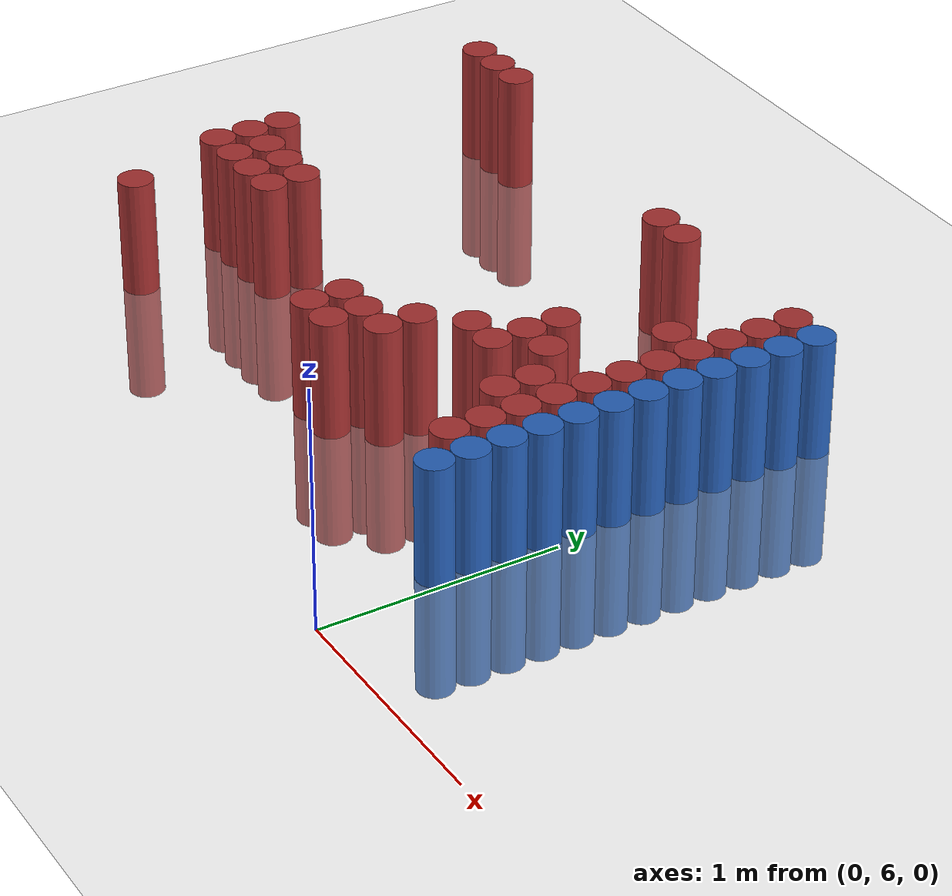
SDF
<sdf version="1.6">
 <world name="default">
  <model name="ground_plane">
   <static>1</static>
   <link name="link">
    <collision name="collision">
     <geometry><plane><normal>0 0 1</normal><size>100 100</size></plane></geometry>
     <surface><friction><ode><mu>100</mu><mu2>50</mu2></ode></friction></surface>
    </collision>
    <visual name="visual">
     <cast_shadows>0</cast_shadows>
     <geometry><plane><normal>0 0 1</normal><size>100 100</size></plane></geometry>
     <material>
      <script><uri>file://media/materials/scripts/gazebo.material</uri><name>Gazebo/Grey</name></script>
     </material>
    </visual>
   </link>
  </model>
  <model name="unit_cylinder_181">
   <static>1</static>
   <pose>-2.775000 8.325000 0.000000 0.000000 0.000000 0.000000</pose>
   <link name="link">
    <inertial>
     <mass>1</mass>
     <inertia><ixx>0.145833</ixx><ixy>0</ixy><ixz>0</ixz><iyy>0.145833</iyy><iyz>0</iyz><izz>0.125</izz></inertia>
    </inertial>
    <collision name="collision">
     <geometry><cylinder><radius>0.075000</radius><length>1</length></cylinder></geometry>
    </collision>
    <visual name="visual">
     <geometry><cylinder><radius>0.075000</radius><length>1</length></cylinder></geometry>
     <material>
      <ambient>0.648000 0.192000 0.192000 1</ambient>
      <diffuse>0.648000 0.192000 0.192000 1</diffuse>
     </material>
     <material>
      <script><name>Gazebo/Grey</name><uri>file://media/materials/scripts/gazebo.material</uri></script>
     </material>
    </visual>
   </link>
  </model>
  <model name="unit_cylinder_193">
   <static>1</static>
   <pose>-2.625000 6.975000 0.000000 0.000000 0.000000 0.000000</pose>
   <link name="link">
    <inertial>
     <mass>1</mass>
     <inertia><ixx>0.145833</ixx><ixy>0</ixy><ixz>0</ixz><iyy>0.145833</iyy><iyz>0</iyz><izz>0.125</izz></inertia>
    </inertial>
    <collision name="collision">
     <geometry><cylinder><radius>0.075000</radius><length>1</length></cylinder></geometry>
    </collision>
    <visual name="visual">
     <geometry><cylinder><radius>0.075000</radius><length>1</length></cylinder></geometry>
     <material>
      <ambient>0.648000 0.192000 0.192000 1</ambient>
      <diffuse>0.648000 0.192000 0.192000 1</diffuse>
     </material>
     <material>
      <script><name>Gazebo/Grey</name><uri>file://media/materials/scripts/gazebo.material</uri></script>
     </material>
    </visual>
   </link>
  </model>
  <model name="unit_cylinder_194">
   <static>1</static>
   <pose>-2.625000 7.125000 0.000000 0.000000 0.000000 0.000000</pose>
   <link name="link">
    <inertial>
     <mass>1</mass>
     <inertia><ixx>0.145833</ixx><ixy>0</ixy><ixz>0</ixz><iyy>0.145833</iyy><iyz>0</iyz><izz>0.125</izz></inertia>
    </inertial>
    <collision name="collision">
     <geometry><cylinder><radius>0.075000</radius><length>1</length></cylinder></geometry>
    </collision>
    <visual name="visual">
     <geometry><cylinder><radius>0.075000</radius><length>1</length></cylinder></geometry>
     <material>
      <ambient>0.648000 0.192000 0.192000 1</ambient>
      <diffuse>0.648000 0.192000 0.192000 1</diffuse>
     </material>
     <material>
      <script><name>Gazebo/Grey</name><uri>file://media/materials/scripts/gazebo.material</uri></script>
     </material>
    </visual>
   </link>
  </model>
  <model name="unit_cylinder_195">
   <static>1</static>
   <pose>-2.625000 7.275000 0.000000 0.000000 0.000000 0.000000</pose>
   <link name="link">
    <inertial>
     <mass>1</mass>
     <inertia><ixx>0.145833</ixx><ixy>0</ixy><ixz>0</ixz><iyy>0.145833</iyy><iyz>0</iyz><izz>0.125</izz></inertia>
    </inertial>
    <collision name="collision">
     <geometry><cylinder><radius>0.075000</radius><length>1</length></cylinder></geometry>
    </collision>
    <visual name="visual">
     <geometry><cylinder><radius>0.075000</radius><length>1</length></cylinder></geometry>
     <material>
      <ambient>0.648000 0.192000 0.192000 1</ambient>
      <diffuse>0.648000 0.192000 0.192000 1</diffuse>
     </material>
     <material>
      <script><name>Gazebo/Grey</name><uri>file://media/materials/scripts/gazebo.material</uri></script>
     </material>
    </visual>
   </link>
  </model>
  <model name="unit_cylinder_196">
   <static>1</static>
   <pose>-2.625000 8.325000 0.000000 0.000000 0.000000 0.000000</pose>
   <link name="link">
    <inertial>
     <mass>1</mass>
     <inertia><ixx>0.145833</ixx><ixy>0</ixy><ixz>0</ixz><iyy>0.145833</iyy><iyz>0</iyz><izz>0.125</izz></inertia>
    </inertial>
    <collision name="collision">
     <geometry><cylinder><radius>0.075000</radius><length>1</length></cylinder></geometry>
    </collision>
    <visual name="visual">
     <geometry><cylinder><radius>0.075000</radius><length>1</length></cylinder></geometry>
     <material>
      <ambient>0.648000 0.192000 0.192000 1</ambient>
      <diffuse>0.648000 0.192000 0.192000 1</diffuse>
     </material>
     <material>
      <script><name>Gazebo/Grey</name><uri>file://media/materials/scripts/gazebo.material</uri></script>
     </material>
    </visual>
   </link>
  </model>
  <model name="unit_cylinder_201">
   <static>1</static>
   <pose>-2.475000 6.525000 0.000000 0.000000 0.000000 0.000000</pose>
   <link name="link">
    <inertial>
     <mass>1</mass>
     <inertia><ixx>0.145833</ixx><ixy>0</ixy><ixz>0</ixz><iyy>0.145833</iyy><iyz>0</iyz><izz>0.125</izz></inertia>
    </inertial>
    <collision name="collision">
     <geometry><cylinder><radius>0.075000</radius><length>1</length></cylinder></geometry>
    </collision>
    <visual name="visual">
     <geometry><cylinder><radius>0.075000</radius><length>1</length></cylinder></geometry>
     <material>
      <ambient>0.648000 0.192000 0.192000 1</ambient>
      <diffuse>0.648000 0.192000 0.192000 1</diffuse>
     </material>
     <material>
      <script><name>Gazebo/Grey</name><uri>file://media/materials/scripts/gazebo.material</uri></script>
     </material>
    </visual>
   </link>
  </model>
  <model name="unit_cylinder_202">
   <static>1</static>
   <pose>-2.475000 6.975000 0.000000 0.000000 0.000000 0.000000</pose>
   <link name="link">
    <inertial>
     <mass>1</mass>
     <inertia><ixx>0.145833</ixx><ixy>0</ixy><ixz>0</ixz><iyy>0.145833</iyy><iyz>0</iyz><izz>0.125</izz></inertia>
    </inertial>
    <collision name="collision">
     <geometry><cylinder><radius>0.075000</radius><length>1</length></cylinder></geometry>
    </collision>
    <visual name="visual">
     <geometry><cylinder><radius>0.075000</radius><length>1</length></cylinder></geometry>
     <material>
      <ambient>0.648000 0.192000 0.192000 1</ambient>
      <diffuse>0.648000 0.192000 0.192000 1</diffuse>
     </material>
     <material>
      <script><name>Gazebo/Grey</name><uri>file://media/materials/scripts/gazebo.material</uri></script>
     </material>
    </visual>
   </link>
  </model>
  <model name="unit_cylinder_203">
   <static>1</static>
   <pose>-2.475000 7.125000 0.000000 0.000000 0.000000 0.000000</pose>
   <link name="link">
    <inertial>
     <mass>1</mass>
     <inertia><ixx>0.145833</ixx><ixy>0</ixy><ixz>0</ixz><iyy>0.145833</iyy><iyz>0</iyz><izz>0.125</izz></inertia>
    </inertial>
    <collision name="collision">
     <geometry><cylinder><radius>0.075000</radius><length>1</length></cylinder></geometry>
    </collision>
    <visual name="visual">
     <geometry><cylinder><radius>0.075000</radius><length>1</length></cylinder></geometry>
     <material>
      <ambient>0.648000 0.192000 0.192000 1</ambient>
      <diffuse>0.648000 0.192000 0.192000 1</diffuse>
     </material>
     <material>
      <script><name>Gazebo/Grey</name><uri>file://media/materials/scripts/gazebo.material</uri></script>
     </material>
    </visual>
   </link>
  </model>
  <model name="unit_cylinder_204">
   <static>1</static>
   <pose>-2.475000 8.325000 0.000000 0.000000 0.000000 0.000000</pose>
   <link name="link">
    <inertial>
     <mass>1</mass>
     <inertia><ixx>0.145833</ixx><ixy>0</ixy><ixz>0</ixz><iyy>0.145833</iyy><iyz>0</iyz><izz>0.125</izz></inertia>
    </inertial>
    <collision name="collision">
     <geometry><cylinder><radius>0.075000</radius><length>1</length></cylinder></geometry>
    </collision>
    <visual name="visual">
     <geometry><cylinder><radius>0.075000</radius><length>1</length></cylinder></geometry>
     <material>
      <ambient>0.648000 0.192000 0.192000 1</ambient>
      <diffuse>0.648000 0.192000 0.192000 1</diffuse>
     </material>
     <material>
      <script><name>Gazebo/Grey</name><uri>file://media/materials/scripts/gazebo.material</uri></script>
     </material>
    </visual>
   </link>
  </model>
  <model name="unit_cylinder_210">
   <static>1</static>
   <pose>-2.325000 6.975000 0.000000 0.000000 0.000000 0.000000</pose>
   <link name="link">
    <inertial>
     <mass>1</mass>
     <inertia><ixx>0.145833</ixx><ixy>0</ixy><ixz>0</ixz><iyy>0.145833</iyy><iyz>0</iyz><izz>0.125</izz></inertia>
    </inertial>
    <collision name="collision">
     <geometry><cylinder><radius>0.075000</radius><length>1</length></cylinder></geometry>
    </collision>
    <visual name="visual">
     <geometry><cylinder><radius>0.075000</radius><length>1</length></cylinder></geometry>
     <material>
      <ambient>0.648000 0.192000 0.192000 1</ambient>
      <diffuse>0.648000 0.192000 0.192000 1</diffuse>
     </material>
     <material>
      <script><name>Gazebo/Grey</name><uri>file://media/materials/scripts/gazebo.material</uri></script>
     </material>
    </visual>
   </link>
  </model>
  <model name="unit_cylinder_211">
   <static>1</static>
   <pose>-2.325000 7.125000 0.000000 0.000000 0.000000 0.000000</pose>
   <link name="link">
    <inertial>
     <mass>1</mass>
     <inertia><ixx>0.145833</ixx><ixy>0</ixy><ixz>0</ixz><iyy>0.145833</iyy><iyz>0</iyz><izz>0.125</izz></inertia>
    </inertial>
    <collision name="collision">
     <geometry><cylinder><radius>0.075000</radius><length>1</length></cylinder></geometry>
    </collision>
    <visual name="visual">
     <geometry><cylinder><radius>0.075000</radius><length>1</length></cylinder></geometry>
     <material>
      <ambient>0.648000 0.192000 0.192000 1</ambient>
      <diffuse>0.648000 0.192000 0.192000 1</diffuse>
     </material>
     <material>
      <script><name>Gazebo/Grey</name><uri>file://media/materials/scripts/gazebo.material</uri></script>
     </material>
    </visual>
   </link>
  </model>
  <model name="unit_cylinder_214">
   <static>1</static>
   <pose>-2.175000 6.975000 0.000000 0.000000 0.000000 0.000000</pose>
   <link name="link">
    <inertial>
     <mass>1</mass>
     <inertia><ixx>0.145833</ixx><ixy>0</ixy><ixz>0</ixz><iyy>0.145833</iyy><iyz>0</iyz><izz>0.125</izz></inertia>
    </inertial>
    <collision name="collision">
     <geometry><cylinder><radius>0.075000</radius><length>1</length></cylinder></geometry>
    </collision>
    <visual name="visual">
     <geometry><cylinder><radius>0.075000</radius><length>1</length></cylinder></geometry>
     <material>
      <ambient>0.648000 0.192000 0.192000 1</ambient>
      <diffuse>0.648000 0.192000 0.192000 1</diffuse>
     </material>
     <material>
      <script><name>Gazebo/Grey</name><uri>file://media/materials/scripts/gazebo.material</uri></script>
     </material>
    </visual>
   </link>
  </model>
  <model name="unit_cylinder_215">
   <static>1</static>
   <pose>-2.175000 7.125000 0.000000 0.000000 0.000000 0.000000</pose>
   <link name="link">
    <inertial>
     <mass>1</mass>
     <inertia><ixx>0.145833</ixx><ixy>0</ixy><ixz>0</ixz><iyy>0.145833</iyy><iyz>0</iyz><izz>0.125</izz></inertia>
    </inertial>
    <collision name="collision">
     <geometry><cylinder><radius>0.075000</radius><length>1</length></cylinder></geometry>
    </collision>
    <visual name="visual">
     <geometry><cylinder><radius>0.075000</radius><length>1</length></cylinder></geometry>
     <material>
      <ambient>0.648000 0.192000 0.192000 1</ambient>
      <diffuse>0.648000 0.192000 0.192000 1</diffuse>
     </material>
     <material>
      <script><name>Gazebo/Grey</name><uri>file://media/materials/scripts/gazebo.material</uri></script>
     </material>
    </visual>
   </link>
  </model>
  <model name="unit_cylinder_236">
   <static>1</static>
   <pose>-1.275000 6.675000 0.000000 0.000000 0.000000 0.000000</pose>
   <link name="link">
    <inertial>
     <mass>1</mass>
     <inertia><ixx>0.145833</ixx><ixy>0</ixy><ixz>0</ixz><iyy>0.145833</iyy><iyz>0</iyz><izz>0.125</izz></inertia>
    </inertial>
    <collision name="collision">
     <geometry><cylinder><radius>0.075000</radius><length>1</length></cylinder></geometry>
    </collision>
    <visual name="visual">
     <geometry><cylinder><radius>0.075000</radius><length>1</length></cylinder></geometry>
     <material>
      <ambient>0.648000 0.192000 0.192000 1</ambient>
      <diffuse>0.648000 0.192000 0.192000 1</diffuse>
     </material>
     <material>
      <script><name>Gazebo/Grey</name><uri>file://media/materials/scripts/gazebo.material</uri></script>
     </material>
    </visual>
   </link>
  </model>
  <model name="unit_cylinder_237">
   <static>1</static>
   <pose>-1.275000 6.825000 0.000000 0.000000 0.000000 0.000000</pose>
   <link name="link">
    <inertial>
     <mass>1</mass>
     <inertia><ixx>0.145833</ixx><ixy>0</ixy><ixz>0</ixz><iyy>0.145833</iyy><iyz>0</iyz><izz>0.125</izz></inertia>
    </inertial>
    <collision name="collision">
     <geometry><cylinder><radius>0.075000</radius><length>1</length></cylinder></geometry>
    </collision>
    <visual name="visual">
     <geometry><cylinder><radius>0.075000</radius><length>1</length></cylinder></geometry>
     <material>
      <ambient>0.648000 0.192000 0.192000 1</ambient>
      <diffuse>0.648000 0.192000 0.192000 1</diffuse>
     </material>
     <material>
      <script><name>Gazebo/Grey</name><uri>file://media/materials/scripts/gazebo.material</uri></script>
     </material>
    </visual>
   </link>
  </model>
  <model name="unit_cylinder_239">
   <static>1</static>
   <pose>-1.125000 6.675000 0.000000 0.000000 0.000000 0.000000</pose>
   <link name="link">
    <inertial>
     <mass>1</mass>
     <inertia><ixx>0.145833</ixx><ixy>0</ixy><ixz>0</ixz><iyy>0.145833</iyy><iyz>0</iyz><izz>0.125</izz></inertia>
    </inertial>
    <collision name="collision">
     <geometry><cylinder><radius>0.075000</radius><length>1</length></cylinder></geometry>
    </collision>
    <visual name="visual">
     <geometry><cylinder><radius>0.075000</radius><length>1</length></cylinder></geometry>
     <material>
      <ambient>0.648000 0.192000 0.192000 1</ambient>
      <diffuse>0.648000 0.192000 0.192000 1</diffuse>
     </material>
     <material>
      <script><name>Gazebo/Grey</name><uri>file://media/materials/scripts/gazebo.material</uri></script>
     </material>
    </visual>
   </link>
  </model>
  <model name="unit_cylinder_240">
   <static>1</static>
   <pose>-1.125000 6.825000 0.000000 0.000000 0.000000 0.000000</pose>
   <link name="link">
    <inertial>
     <mass>1</mass>
     <inertia><ixx>0.145833</ixx><ixy>0</ixy><ixz>0</ixz><iyy>0.145833</iyy><iyz>0</iyz><izz>0.125</izz></inertia>
    </inertial>
    <collision name="collision">
     <geometry><cylinder><radius>0.075000</radius><length>1</length></cylinder></geometry>
    </collision>
    <visual name="visual">
     <geometry><cylinder><radius>0.075000</radius><length>1</length></cylinder></geometry>
     <material>
      <ambient>0.648000 0.192000 0.192000 1</ambient>
      <diffuse>0.648000 0.192000 0.192000 1</diffuse>
     </material>
     <material>
      <script><name>Gazebo/Grey</name><uri>file://media/materials/scripts/gazebo.material</uri></script>
     </material>
    </visual>
   </link>
  </model>
  <model name="unit_cylinder_241">
   <static>1</static>
   <pose>-1.125000 8.175000 0.000000 0.000000 0.000000 0.000000</pose>
   <link name="link">
    <inertial>
     <mass>1</mass>
     <inertia><ixx>0.145833</ixx><ixy>0</ixy><ixz>0</ixz><iyy>0.145833</iyy><iyz>0</iyz><izz>0.125</izz></inertia>
    </inertial>
    <collision name="collision">
     <geometry><cylinder><radius>0.075000</radius><length>1</length></cylinder></geometry>
    </collision>
    <visual name="visual">
     <geometry><cylinder><radius>0.075000</radius><length>1</length></cylinder></geometry>
     <material>
      <ambient>0.648000 0.192000 0.192000 1</ambient>
      <diffuse>0.648000 0.192000 0.192000 1</diffuse>
     </material>
     <material>
      <script><name>Gazebo/Grey</name><uri>file://media/materials/scripts/gazebo.material</uri></script>
     </material>
    </visual>
   </link>
  </model>
  <model name="unit_cylinder_243">
   <static>1</static>
   <pose>-0.975000 6.825000 0.000000 0.000000 0.000000 0.000000</pose>
   <link name="link">
    <inertial>
     <mass>1</mass>
     <inertia><ixx>0.145833</ixx><ixy>0</ixy><ixz>0</ixz><iyy>0.145833</iyy><iyz>0</iyz><izz>0.125</izz></inertia>
    </inertial>
    <collision name="collision">
     <geometry><cylinder><radius>0.075000</radius><length>1</length></cylinder></geometry>
    </collision>
    <visual name="visual">
     <geometry><cylinder><radius>0.075000</radius><length>1</length></cylinder></geometry>
     <material>
      <ambient>0.648000 0.192000 0.192000 1</ambient>
      <diffuse>0.648000 0.192000 0.192000 1</diffuse>
     </material>
     <material>
      <script><name>Gazebo/Grey</name><uri>file://media/materials/scripts/gazebo.material</uri></script>
     </material>
    </visual>
   </link>
  </model>
  <model name="unit_cylinder_244">
   <static>1</static>
   <pose>-0.975000 6.975000 0.000000 0.000000 0.000000 0.000000</pose>
   <link name="link">
    <inertial>
     <mass>1</mass>
     <inertia><ixx>0.145833</ixx><ixy>0</ixy><ixz>0</ixz><iyy>0.145833</iyy><iyz>0</iyz><izz>0.125</izz></inertia>
    </inertial>
    <collision name="collision">
     <geometry><cylinder><radius>0.075000</radius><length>1</length></cylinder></geometry>
    </collision>
    <visual name="visual">
     <geometry><cylinder><radius>0.075000</radius><length>1</length></cylinder></geometry>
     <material>
      <ambient>0.648000 0.192000 0.192000 1</ambient>
      <diffuse>0.648000 0.192000 0.192000 1</diffuse>
     </material>
     <material>
      <script><name>Gazebo/Grey</name><uri>file://media/materials/scripts/gazebo.material</uri></script>
     </material>
    </visual>
   </link>
  </model>
  <model name="unit_cylinder_245">
   <static>1</static>
   <pose>-0.975000 8.175000 0.000000 0.000000 0.000000 0.000000</pose>
   <link name="link">
    <inertial>
     <mass>1</mass>
     <inertia><ixx>0.145833</ixx><ixy>0</ixy><ixz>0</ixz><iyy>0.145833</iyy><iyz>0</iyz><izz>0.125</izz></inertia>
    </inertial>
    <collision name="collision">
     <geometry><cylinder><radius>0.075000</radius><length>1</length></cylinder></geometry>
    </collision>
    <visual name="visual">
     <geometry><cylinder><radius>0.075000</radius><length>1</length></cylinder></geometry>
     <material>
      <ambient>0.648000 0.192000 0.192000 1</ambient>
      <diffuse>0.648000 0.192000 0.192000 1</diffuse>
     </material>
     <material>
      <script><name>Gazebo/Grey</name><uri>file://media/materials/scripts/gazebo.material</uri></script>
     </material>
    </visual>
   </link>
  </model>
  <model name="unit_cylinder_247">
   <static>1</static>
   <pose>-0.825000 7.125000 0.000000 0.000000 0.000000 0.000000</pose>
   <link name="link">
    <inertial>
     <mass>1</mass>
     <inertia><ixx>0.145833</ixx><ixy>0</ixy><ixz>0</ixz><iyy>0.145833</iyy><iyz>0</iyz><izz>0.125</izz></inertia>
    </inertial>
    <collision name="collision">
     <geometry><cylinder><radius>0.075000</radius><length>1</length></cylinder></geometry>
    </collision>
    <visual name="visual">
     <geometry><cylinder><radius>0.075000</radius><length>1</length></cylinder></geometry>
     <material>
      <ambient>0.648000 0.192000 0.192000 1</ambient>
      <diffuse>0.648000 0.192000 0.192000 1</diffuse>
     </material>
     <material>
      <script><name>Gazebo/Grey</name><uri>file://media/materials/scripts/gazebo.material</uri></script>
     </material>
    </visual>
   </link>
  </model>
  <model name="unit_cylinder_250">
   <static>1</static>
   <pose>-0.675000 7.125000 0.000000 0.000000 0.000000 0.000000</pose>
   <link name="link">
    <inertial>
     <mass>1</mass>
     <inertia><ixx>0.145833</ixx><ixy>0</ixy><ixz>0</ixz><iyy>0.145833</iyy><iyz>0</iyz><izz>0.125</izz></inertia>
    </inertial>
    <collision name="collision">
     <geometry><cylinder><radius>0.075000</radius><length>1</length></cylinder></geometry>
    </collision>
    <visual name="visual">
     <geometry><cylinder><radius>0.075000</radius><length>1</length></cylinder></geometry>
     <material>
      <ambient>0.648000 0.192000 0.192000 1</ambient>
      <diffuse>0.648000 0.192000 0.192000 1</diffuse>
     </material>
     <material>
      <script><name>Gazebo/Grey</name><uri>file://media/materials/scripts/gazebo.material</uri></script>
     </material>
    </visual>
   </link>
  </model>
  <model name="unit_cylinder_251">
   <static>1</static>
   <pose>-0.675000 7.275000 0.000000 0.000000 0.000000 0.000000</pose>
   <link name="link">
    <inertial>
     <mass>1</mass>
     <inertia><ixx>0.145833</ixx><ixy>0</ixy><ixz>0</ixz><iyy>0.145833</iyy><iyz>0</iyz><izz>0.125</izz></inertia>
    </inertial>
    <collision name="collision">
     <geometry><cylinder><radius>0.075000</radius><length>1</length></cylinder></geometry>
    </collision>
    <visual name="visual">
     <geometry><cylinder><radius>0.075000</radius><length>1</length></cylinder></geometry>
     <material>
      <ambient>0.648000 0.192000 0.192000 1</ambient>
      <diffuse>0.648000 0.192000 0.192000 1</diffuse>
     </material>
     <material>
      <script><name>Gazebo/Grey</name><uri>file://media/materials/scripts/gazebo.material</uri></script>
     </material>
    </visual>
   </link>
  </model>
  <model name="unit_cylinder_252">
   <static>1</static>
   <pose>-0.675000 7.425000 0.000000 0.000000 0.000000 0.000000</pose>
   <link name="link">
    <inertial>
     <mass>1</mass>
     <inertia><ixx>0.145833</ixx><ixy>0</ixy><ixz>0</ixz><iyy>0.145833</iyy><iyz>0</iyz><izz>0.125</izz></inertia>
    </inertial>
    <collision name="collision">
     <geometry><cylinder><radius>0.075000</radius><length>1</length></cylinder></geometry>
    </collision>
    <visual name="visual">
     <geometry><cylinder><radius>0.075000</radius><length>1</length></cylinder></geometry>
     <material>
      <ambient>0.648000 0.192000 0.192000 1</ambient>
      <diffuse>0.648000 0.192000 0.192000 1</diffuse>
     </material>
     <material>
      <script><name>Gazebo/Grey</name><uri>file://media/materials/scripts/gazebo.material</uri></script>
     </material>
    </visual>
   </link>
  </model>
  <model name="unit_cylinder_257">
   <static>1</static>
   <pose>-0.525000 7.275000 0.000000 0.000000 0.000000 0.000000</pose>
   <link name="link">
    <inertial>
     <mass>1</mass>
     <inertia><ixx>0.145833</ixx><ixy>0</ixy><ixz>0</ixz><iyy>0.145833</iyy><iyz>0</iyz><izz>0.125</izz></inertia>
    </inertial>
    <collision name="collision">
     <geometry><cylinder><radius>0.075000</radius><length>1</length></cylinder></geometry>
    </collision>
    <visual name="visual">
     <geometry><cylinder><radius>0.075000</radius><length>1</length></cylinder></geometry>
     <material>
      <ambient>0.648000 0.192000 0.192000 1</ambient>
      <diffuse>0.648000 0.192000 0.192000 1</diffuse>
     </material>
     <material>
      <script><name>Gazebo/Grey</name><uri>file://media/materials/scripts/gazebo.material</uri></script>
     </material>
    </visual>
   </link>
  </model>
  <model name="unit_cylinder_260">
   <static>1</static>
   <pose>-0.375000 6.975000 0.000000 0.000000 0.000000 0.000000</pose>
   <link name="link">
    <inertial>
     <mass>1</mass>
     <inertia><ixx>0.145833</ixx><ixy>0</ixy><ixz>0</ixz><iyy>0.145833</iyy><iyz>0</iyz><izz>0.125</izz></inertia>
    </inertial>
    <collision name="collision">
     <geometry><cylinder><radius>0.075000</radius><length>1</length></cylinder></geometry>
    </collision>
    <visual name="visual">
     <geometry><cylinder><radius>0.075000</radius><length>1</length></cylinder></geometry>
     <material>
      <ambient>0.648000 0.192000 0.192000 1</ambient>
      <diffuse>0.648000 0.192000 0.192000 1</diffuse>
     </material>
     <material>
      <script><name>Gazebo/Grey</name><uri>file://media/materials/scripts/gazebo.material</uri></script>
     </material>
    </visual>
   </link>
  </model>
  <model name="unit_cylinder_261">
   <static>1</static>
   <pose>-0.375000 7.125000 0.000000 0.000000 0.000000 0.000000</pose>
   <link name="link">
    <inertial>
     <mass>1</mass>
     <inertia><ixx>0.145833</ixx><ixy>0</ixy><ixz>0</ixz><iyy>0.145833</iyy><iyz>0</iyz><izz>0.125</izz></inertia>
    </inertial>
    <collision name="collision">
     <geometry><cylinder><radius>0.075000</radius><length>1</length></cylinder></geometry>
    </collision>
    <visual name="visual">
     <geometry><cylinder><radius>0.075000</radius><length>1</length></cylinder></geometry>
     <material>
      <ambient>0.648000 0.192000 0.192000 1</ambient>
      <diffuse>0.648000 0.192000 0.192000 1</diffuse>
     </material>
     <material>
      <script><name>Gazebo/Grey</name><uri>file://media/materials/scripts/gazebo.material</uri></script>
     </material>
    </visual>
   </link>
  </model>
  <model name="unit_cylinder_262">
   <static>1</static>
   <pose>-0.375000 7.725000 0.000000 0.000000 0.000000 0.000000</pose>
   <link name="link">
    <inertial>
     <mass>1</mass>
     <inertia><ixx>0.145833</ixx><ixy>0</ixy><ixz>0</ixz><iyy>0.145833</iyy><iyz>0</iyz><izz>0.125</izz></inertia>
    </inertial>
    <collision name="collision">
     <geometry><cylinder><radius>0.075000</radius><length>1</length></cylinder></geometry>
    </collision>
    <visual name="visual">
     <geometry><cylinder><radius>0.075000</radius><length>1</length></cylinder></geometry>
     <material>
      <ambient>0.648000 0.192000 0.192000 1</ambient>
      <diffuse>0.648000 0.192000 0.192000 1</diffuse>
     </material>
     <material>
      <script><name>Gazebo/Grey</name><uri>file://media/materials/scripts/gazebo.material</uri></script>
     </material>
    </visual>
   </link>
  </model>
  <model name="unit_cylinder_266">
   <static>1</static>
   <pose>-0.225000 6.675000 0.000000 0.000000 0.000000 0.000000</pose>
   <link name="link">
    <inertial>
     <mass>1</mass>
     <inertia><ixx>0.145833</ixx><ixy>0</ixy><ixz>0</ixz><iyy>0.145833</iyy><iyz>0</iyz><izz>0.125</izz></inertia>
    </inertial>
    <collision name="collision">
     <geometry><cylinder><radius>0.075000</radius><length>1</length></cylinder></geometry>
    </collision>
    <visual name="visual">
     <geometry><cylinder><radius>0.075000</radius><length>1</length></cylinder></geometry>
     <material>
      <ambient>0.648000 0.192000 0.192000 1</ambient>
      <diffuse>0.648000 0.192000 0.192000 1</diffuse>
     </material>
     <material>
      <script><name>Gazebo/Grey</name><uri>file://media/materials/scripts/gazebo.material</uri></script>
     </material>
    </visual>
   </link>
  </model>
  <model name="unit_cylinder_267">
   <static>1</static>
   <pose>-0.225000 6.825000 0.000000 0.000000 0.000000 0.000000</pose>
   <link name="link">
    <inertial>
     <mass>1</mass>
     <inertia><ixx>0.145833</ixx><ixy>0</ixy><ixz>0</ixz><iyy>0.145833</iyy><iyz>0</iyz><izz>0.125</izz></inertia>
    </inertial>
    <collision name="collision">
     <geometry><cylinder><radius>0.075000</radius><length>1</length></cylinder></geometry>
    </collision>
    <visual name="visual">
     <geometry><cylinder><radius>0.075000</radius><length>1</length></cylinder></geometry>
     <material>
      <ambient>0.648000 0.192000 0.192000 1</ambient>
      <diffuse>0.648000 0.192000 0.192000 1</diffuse>
     </material>
     <material>
      <script><name>Gazebo/Grey</name><uri>file://media/materials/scripts/gazebo.material</uri></script>
     </material>
    </visual>
   </link>
  </model>
  <model name="unit_cylinder_268">
   <static>1</static>
   <pose>-0.225000 6.975000 0.000000 0.000000 0.000000 0.000000</pose>
   <link name="link">
    <inertial>
     <mass>1</mass>
     <inertia><ixx>0.145833</ixx><ixy>0</ixy><ixz>0</ixz><iyy>0.145833</iyy><iyz>0</iyz><izz>0.125</izz></inertia>
    </inertial>
    <collision name="collision">
     <geometry><cylinder><radius>0.075000</radius><length>1</length></cylinder></geometry>
    </collision>
    <visual name="visual">
     <geometry><cylinder><radius>0.075000</radius><length>1</length></cylinder></geometry>
     <material>
      <ambient>0.648000 0.192000 0.192000 1</ambient>
      <diffuse>0.648000 0.192000 0.192000 1</diffuse>
     </material>
     <material>
      <script><name>Gazebo/Grey</name><uri>file://media/materials/scripts/gazebo.material</uri></script>
     </material>
    </visual>
   </link>
  </model>
  <model name="unit_cylinder_269">
   <static>1</static>
   <pose>-0.225000 7.125000 0.000000 0.000000 0.000000 0.000000</pose>
   <link name="link">
    <inertial>
     <mass>1</mass>
     <inertia><ixx>0.145833</ixx><ixy>0</ixy><ixz>0</ixz><iyy>0.145833</iyy><iyz>0</iyz><izz>0.125</izz></inertia>
    </inertial>
    <collision name="collision">
     <geometry><cylinder><radius>0.075000</radius><length>1</length></cylinder></geometry>
    </collision>
    <visual name="visual">
     <geometry><cylinder><radius>0.075000</radius><length>1</length></cylinder></geometry>
     <material>
      <ambient>0.648000 0.192000 0.192000 1</ambient>
      <diffuse>0.648000 0.192000 0.192000 1</diffuse>
     </material>
     <material>
      <script><name>Gazebo/Grey</name><uri>file://media/materials/scripts/gazebo.material</uri></script>
     </material>
    </visual>
   </link>
  </model>
  <model name="unit_cylinder_270">
   <static>1</static>
   <pose>-0.225000 7.275000 0.000000 0.000000 0.000000 0.000000</pose>
   <link name="link">
    <inertial>
     <mass>1</mass>
     <inertia><ixx>0.145833</ixx><ixy>0</ixy><ixz>0</ixz><iyy>0.145833</iyy><iyz>0</iyz><izz>0.125</izz></inertia>
    </inertial>
    <collision name="collision">
     <geometry><cylinder><radius>0.075000</radius><length>1</length></cylinder></geometry>
    </collision>
    <visual name="visual">
     <geometry><cylinder><radius>0.075000</radius><length>1</length></cylinder></geometry>
     <material>
      <ambient>0.648000 0.192000 0.192000 1</ambient>
      <diffuse>0.648000 0.192000 0.192000 1</diffuse>
     </material>
     <material>
      <script><name>Gazebo/Grey</name><uri>file://media/materials/scripts/gazebo.material</uri></script>
     </material>
    </visual>
   </link>
  </model>
  <model name="unit_cylinder_271">
   <static>1</static>
   <pose>-0.225000 7.425000 0.000000 0.000000 0.000000 0.000000</pose>
   <link name="link">
    <inertial>
     <mass>1</mass>
     <inertia><ixx>0.145833</ixx><ixy>0</ixy><ixz>0</ixz><iyy>0.145833</iyy><iyz>0</iyz><izz>0.125</izz></inertia>
    </inertial>
    <collision name="collision">
     <geometry><cylinder><radius>0.075000</radius><length>1</length></cylinder></geometry>
    </collision>
    <visual name="visual">
     <geometry><cylinder><radius>0.075000</radius><length>1</length></cylinder></geometry>
     <material>
      <ambient>0.648000 0.192000 0.192000 1</ambient>
      <diffuse>0.648000 0.192000 0.192000 1</diffuse>
     </material>
     <material>
      <script><name>Gazebo/Grey</name><uri>file://media/materials/scripts/gazebo.material</uri></script>
     </material>
    </visual>
   </link>
  </model>
  <model name="unit_cylinder_272">
   <static>1</static>
   <pose>-0.225000 7.575000 0.000000 0.000000 0.000000 0.000000</pose>
   <link name="link">
    <inertial>
     <mass>1</mass>
     <inertia><ixx>0.145833</ixx><ixy>0</ixy><ixz>0</ixz><iyy>0.145833</iyy><iyz>0</iyz><izz>0.125</izz></inertia>
    </inertial>
    <collision name="collision">
     <geometry><cylinder><radius>0.075000</radius><length>1</length></cylinder></geometry>
    </collision>
    <visual name="visual">
     <geometry><cylinder><radius>0.075000</radius><length>1</length></cylinder></geometry>
     <material>
      <ambient>0.648000 0.192000 0.192000 1</ambient>
      <diffuse>0.648000 0.192000 0.192000 1</diffuse>
     </material>
     <material>
      <script><name>Gazebo/Grey</name><uri>file://media/materials/scripts/gazebo.material</uri></script>
     </material>
    </visual>
   </link>
  </model>
  <model name="unit_cylinder_273">
   <static>1</static>
   <pose>-0.225000 7.725000 0.000000 0.000000 0.000000 0.000000</pose>
   <link name="link">
    <inertial>
     <mass>1</mass>
     <inertia><ixx>0.145833</ixx><ixy>0</ixy><ixz>0</ixz><iyy>0.145833</iyy><iyz>0</iyz><izz>0.125</izz></inertia>
    </inertial>
    <collision name="collision">
     <geometry><cylinder><radius>0.075000</radius><length>1</length></cylinder></geometry>
    </collision>
    <visual name="visual">
     <geometry><cylinder><radius>0.075000</radius><length>1</length></cylinder></geometry>
     <material>
      <ambient>0.648000 0.192000 0.192000 1</ambient>
      <diffuse>0.648000 0.192000 0.192000 1</diffuse>
     </material>
     <material>
      <script><name>Gazebo/Grey</name><uri>file://media/materials/scripts/gazebo.material</uri></script>
     </material>
    </visual>
   </link>
  </model>
  <model name="unit_cylinder_274">
   <static>1</static>
   <pose>-0.225000 7.875000 0.000000 0.000000 0.000000 0.000000</pose>
   <link name="link">
    <inertial>
     <mass>1</mass>
     <inertia><ixx>0.145833</ixx><ixy>0</ixy><ixz>0</ixz><iyy>0.145833</iyy><iyz>0</iyz><izz>0.125</izz></inertia>
    </inertial>
    <collision name="collision">
     <geometry><cylinder><radius>0.075000</radius><length>1</length></cylinder></geometry>
    </collision>
    <visual name="visual">
     <geometry><cylinder><radius>0.075000</radius><length>1</length></cylinder></geometry>
     <material>
      <ambient>0.648000 0.192000 0.192000 1</ambient>
      <diffuse>0.648000 0.192000 0.192000 1</diffuse>
     </material>
     <material>
      <script><name>Gazebo/Grey</name><uri>file://media/materials/scripts/gazebo.material</uri></script>
     </material>
    </visual>
   </link>
  </model>
  <model name="unit_cylinder_275">
   <static>1</static>
   <pose>-0.225000 8.025000 0.000000 0.000000 0.000000 0.000000</pose>
   <link name="link">
    <inertial>
     <mass>1</mass>
     <inertia><ixx>0.145833</ixx><ixy>0</ixy><ixz>0</ixz><iyy>0.145833</iyy><iyz>0</iyz><izz>0.125</izz></inertia>
    </inertial>
    <collision name="collision">
     <geometry><cylinder><radius>0.075000</radius><length>1</length></cylinder></geometry>
    </collision>
    <visual name="visual">
     <geometry><cylinder><radius>0.075000</radius><length>1</length></cylinder></geometry>
     <material>
      <ambient>0.648000 0.192000 0.192000 1</ambient>
      <diffuse>0.648000 0.192000 0.192000 1</diffuse>
     </material>
     <material>
      <script><name>Gazebo/Grey</name><uri>file://media/materials/scripts/gazebo.material</uri></script>
     </material>
    </visual>
   </link>
  </model>
  <model name="unit_cylinder_276">
   <static>1</static>
   <pose>-0.225000 8.175000 0.000000 0.000000 0.000000 0.000000</pose>
   <link name="link">
    <inertial>
     <mass>1</mass>
     <inertia><ixx>0.145833</ixx><ixy>0</ixy><ixz>0</ixz><iyy>0.145833</iyy><iyz>0</iyz><izz>0.125</izz></inertia>
    </inertial>
    <collision name="collision">
     <geometry><cylinder><radius>0.075000</radius><length>1</length></cylinder></geometry>
    </collision>
    <visual name="visual">
     <geometry><cylinder><radius>0.075000</radius><length>1</length></cylinder></geometry>
     <material>
      <ambient>0.648000 0.192000 0.192000 1</ambient>
      <diffuse>0.648000 0.192000 0.192000 1</diffuse>
     </material>
     <material>
      <script><name>Gazebo/Grey</name><uri>file://media/materials/scripts/gazebo.material</uri></script>
     </material>
    </visual>
   </link>
  </model>
  <model name="unit_cylinder_291">
   <static>1</static>
   <pose>-0.075000 6.525000 0.000000 0.000000 0.000000 0.000000</pose>
   <link name="link">
    <inertial>
     <mass>1</mass>
     <inertia><ixx>0.145833</ixx><ixy>0</ixy><ixz>0</ixz><iyy>0.145833</iyy><iyz>0</iyz><izz>0.125</izz></inertia>
    </inertial>
    <collision name="collision">
     <geometry><cylinder><radius>0.075000</radius><length>1</length></cylinder></geometry>
    </collision>
    <visual name="visual">
     <geometry><cylinder><radius>0.075000</radius><length>1</length></cylinder></geometry>
     <material>
      <ambient>0.152000 0.379000 0.720000 1</ambient>
      <diffuse>0.152000 0.379000 0.720000 1</diffuse>
     </material>
     <material>
      <script><name>Gazebo/Grey</name><uri>file://media/materials/scripts/gazebo.material</uri></script>
     </material>
    </visual>
   </link>
  </model>
  <model name="unit_cylinder_292">
   <static>1</static>
   <pose>-0.075000 6.675000 0.000000 0.000000 0.000000 0.000000</pose>
   <link name="link">
    <inertial>
     <mass>1</mass>
     <inertia><ixx>0.145833</ixx><ixy>0</ixy><ixz>0</ixz><iyy>0.145833</iyy><iyz>0</iyz><izz>0.125</izz></inertia>
    </inertial>
    <collision name="collision">
     <geometry><cylinder><radius>0.075000</radius><length>1</length></cylinder></geometry>
    </collision>
    <visual name="visual">
     <geometry><cylinder><radius>0.075000</radius><length>1</length></cylinder></geometry>
     <material>
      <ambient>0.152000 0.379000 0.720000 1</ambient>
      <diffuse>0.152000 0.379000 0.720000 1</diffuse>
     </material>
     <material>
      <script><name>Gazebo/Grey</name><uri>file://media/materials/scripts/gazebo.material</uri></script>
     </material>
    </visual>
   </link>
  </model>
  <model name="unit_cylinder_293">
   <static>1</static>
   <pose>-0.075000 6.825000 0.000000 0.000000 0.000000 0.000000</pose>
   <link name="link">
    <inertial>
     <mass>1</mass>
     <inertia><ixx>0.145833</ixx><ixy>0</ixy><ixz>0</ixz><iyy>0.145833</iyy><iyz>0</iyz><izz>0.125</izz></inertia>
    </inertial>
    <collision name="collision">
     <geometry><cylinder><radius>0.075000</radius><length>1</length></cylinder></geometry>
    </collision>
    <visual name="visual">
     <geometry><cylinder><radius>0.075000</radius><length>1</length></cylinder></geometry>
     <material>
      <ambient>0.152000 0.379000 0.720000 1</ambient>
      <diffuse>0.152000 0.379000 0.720000 1</diffuse>
     </material>
     <material>
      <script><name>Gazebo/Grey</name><uri>file://media/materials/scripts/gazebo.material</uri></script>
     </material>
    </visual>
   </link>
  </model>
  <model name="unit_cylinder_294">
   <static>1</static>
   <pose>-0.075000 6.975000 0.000000 0.000000 0.000000 0.000000</pose>
   <link name="link">
    <inertial>
     <mass>1</mass>
     <inertia><ixx>0.145833</ixx><ixy>0</ixy><ixz>0</ixz><iyy>0.145833</iyy><iyz>0</iyz><izz>0.125</izz></inertia>
    </inertial>
    <collision name="collision">
     <geometry><cylinder><radius>0.075000</radius><length>1</length></cylinder></geometry>
    </collision>
    <visual name="visual">
     <geometry><cylinder><radius>0.075000</radius><length>1</length></cylinder></geometry>
     <material>
      <ambient>0.152000 0.379000 0.720000 1</ambient>
      <diffuse>0.152000 0.379000 0.720000 1</diffuse>
     </material>
     <material>
      <script><name>Gazebo/Grey</name><uri>file://media/materials/scripts/gazebo.material</uri></script>
     </material>
    </visual>
   </link>
  </model>
  <model name="unit_cylinder_295">
   <static>1</static>
   <pose>-0.075000 7.125000 0.000000 0.000000 0.000000 0.000000</pose>
   <link name="link">
    <inertial>
     <mass>1</mass>
     <inertia><ixx>0.145833</ixx><ixy>0</ixy><ixz>0</ixz><iyy>0.145833</iyy><iyz>0</iyz><izz>0.125</izz></inertia>
    </inertial>
    <collision name="collision">
     <geometry><cylinder><radius>0.075000</radius><length>1</length></cylinder></geometry>
    </collision>
    <visual name="visual">
     <geometry><cylinder><radius>0.075000</radius><length>1</length></cylinder></geometry>
     <material>
      <ambient>0.152000 0.379000 0.720000 1</ambient>
      <diffuse>0.152000 0.379000 0.720000 1</diffuse>
     </material>
     <material>
      <script><name>Gazebo/Grey</name><uri>file://media/materials/scripts/gazebo.material</uri></script>
     </material>
    </visual>
   </link>
  </model>
  <model name="unit_cylinder_296">
   <static>1</static>
   <pose>-0.075000 7.275000 0.000000 0.000000 0.000000 0.000000</pose>
   <link name="link">
    <inertial>
     <mass>1</mass>
     <inertia><ixx>0.145833</ixx><ixy>0</ixy><ixz>0</ixz><iyy>0.145833</iyy><iyz>0</iyz><izz>0.125</izz></inertia>
    </inertial>
    <collision name="collision">
     <geometry><cylinder><radius>0.075000</radius><length>1</length></cylinder></geometry>
    </collision>
    <visual name="visual">
     <geometry><cylinder><radius>0.075000</radius><length>1</length></cylinder></geometry>
     <material>
      <ambient>0.152000 0.379000 0.720000 1</ambient>
      <diffuse>0.152000 0.379000 0.720000 1</diffuse>
     </material>
     <material>
      <script><name>Gazebo/Grey</name><uri>file://media/materials/scripts/gazebo.material</uri></script>
     </material>
    </visual>
   </link>
  </model>
  <model name="unit_cylinder_297">
   <static>1</static>
   <pose>-0.075000 7.425000 0.000000 0.000000 0.000000 0.000000</pose>
   <link name="link">
    <inertial>
     <mass>1</mass>
     <inertia><ixx>0.145833</ixx><ixy>0</ixy><ixz>0</ixz><iyy>0.145833</iyy><iyz>0</iyz><izz>0.125</izz></inertia>
    </inertial>
    <collision name="collision">
     <geometry><cylinder><radius>0.075000</radius><length>1</length></cylinder></geometry>
    </collision>
    <visual name="visual">
     <geometry><cylinder><radius>0.075000</radius><length>1</length></cylinder></geometry>
     <material>
      <ambient>0.152000 0.379000 0.720000 1</ambient>
      <diffuse>0.152000 0.379000 0.720000 1</diffuse>
     </material>
     <material>
      <script><name>Gazebo/Grey</name><uri>file://media/materials/scripts/gazebo.material</uri></script>
     </material>
    </visual>
   </link>
  </model>
  <model name="unit_cylinder_298">
   <static>1</static>
   <pose>-0.075000 7.575000 0.000000 0.000000 0.000000 0.000000</pose>
   <link name="link">
    <inertial>
     <mass>1</mass>
     <inertia><ixx>0.145833</ixx><ixy>0</ixy><ixz>0</ixz><iyy>0.145833</iyy><iyz>0</iyz><izz>0.125</izz></inertia>
    </inertial>
    <collision name="collision">
     <geometry><cylinder><radius>0.075000</radius><length>1</length></cylinder></geometry>
    </collision>
    <visual name="visual">
     <geometry><cylinder><radius>0.075000</radius><length>1</length></cylinder></geometry>
     <material>
      <ambient>0.152000 0.379000 0.720000 1</ambient>
      <diffuse>0.152000 0.379000 0.720000 1</diffuse>
     </material>
     <material>
      <script><name>Gazebo/Grey</name><uri>file://media/materials/scripts/gazebo.material</uri></script>
     </material>
    </visual>
   </link>
  </model>
  <model name="unit_cylinder_299">
   <static>1</static>
   <pose>-0.075000 7.725000 0.000000 0.000000 0.000000 0.000000</pose>
   <link name="link">
    <inertial>
     <mass>1</mass>
     <inertia><ixx>0.145833</ixx><ixy>0</ixy><ixz>0</ixz><iyy>0.145833</iyy><iyz>0</iyz><izz>0.125</izz></inertia>
    </inertial>
    <collision name="collision">
     <geometry><cylinder><radius>0.075000</radius><length>1</length></cylinder></geometry>
    </collision>
    <visual name="visual">
     <geometry><cylinder><radius>0.075000</radius><length>1</length></cylinder></geometry>
     <material>
      <ambient>0.152000 0.379000 0.720000 1</ambient>
      <diffuse>0.152000 0.379000 0.720000 1</diffuse>
     </material>
     <material>
      <script><name>Gazebo/Grey</name><uri>file://media/materials/scripts/gazebo.material</uri></script>
     </material>
    </visual>
   </link>
  </model>
  <model name="unit_cylinder_300">
   <static>1</static>
   <pose>-0.075000 7.875000 0.000000 0.000000 0.000000 0.000000</pose>
   <link name="link">
    <inertial>
     <mass>1</mass>
     <inertia><ixx>0.145833</ixx><ixy>0</ixy><ixz>0</ixz><iyy>0.145833</iyy><iyz>0</iyz><izz>0.125</izz></inertia>
    </inertial>
    <collision name="collision">
     <geometry><cylinder><radius>0.075000</radius><length>1</length></cylinder></geometry>
    </collision>
    <visual name="visual">
     <geometry><cylinder><radius>0.075000</radius><length>1</length></cylinder></geometry>
     <material>
      <ambient>0.152000 0.379000 0.720000 1</ambient>
      <diffuse>0.152000 0.379000 0.720000 1</diffuse>
     </material>
     <material>
      <script><name>Gazebo/Grey</name><uri>file://media/materials/scripts/gazebo.material</uri></script>
     </material>
    </visual>
   </link>
  </model>
  <model name="unit_cylinder_301">
   <static>1</static>
   <pose>-0.075000 8.025000 0.000000 0.000000 0.000000 0.000000</pose>
   <link name="link">
    <inertial>
     <mass>1</mass>
     <inertia><ixx>0.145833</ixx><ixy>0</ixy><ixz>0</ixz><iyy>0.145833</iyy><iyz>0</iyz><izz>0.125</izz></inertia>
    </inertial>
    <collision name="collision">
     <geometry><cylinder><radius>0.075000</radius><length>1</length></cylinder></geometry>
    </collision>
    <visual name="visual">
     <geometry><cylinder><radius>0.075000</radius><length>1</length></cylinder></geometry>
     <material>
      <ambient>0.152000 0.379000 0.720000 1</ambient>
      <diffuse>0.152000 0.379000 0.720000 1</diffuse>
     </material>
     <material>
      <script><name>Gazebo/Grey</name><uri>file://media/materials/scripts/gazebo.material</uri></script>
     </material>
    </visual>
   </link>
  </model>
  <model name="unit_cylinder_302">
   <static>1</static>
   <pose>-0.075000 8.175000 0.000000 0.000000 0.000000 0.000000</pose>
   <link name="link">
    <inertial>
     <mass>1</mass>
     <inertia><ixx>0.145833</ixx><ixy>0</ixy><ixz>0</ixz><iyy>0.145833</iyy><iyz>0</iyz><izz>0.125</izz></inertia>
    </inertial>
    <collision name="collision">
     <geometry><cylinder><radius>0.075000</radius><length>1</length></cylinder></geometry>
    </collision>
    <visual name="visual">
     <geometry><cylinder><radius>0.075000</radius><length>1</length></cylinder></geometry>
     <material>
      <ambient>0.152000 0.379000 0.720000 1</ambient>
      <diffuse>0.152000 0.379000 0.720000 1</diffuse>
     </material>
     <material>
      <script><name>Gazebo/Grey</name><uri>file://media/materials/scripts/gazebo.material</uri></script>
     </material>
    </visual>
   </link>
  </model>
 </world>
</sdf>
